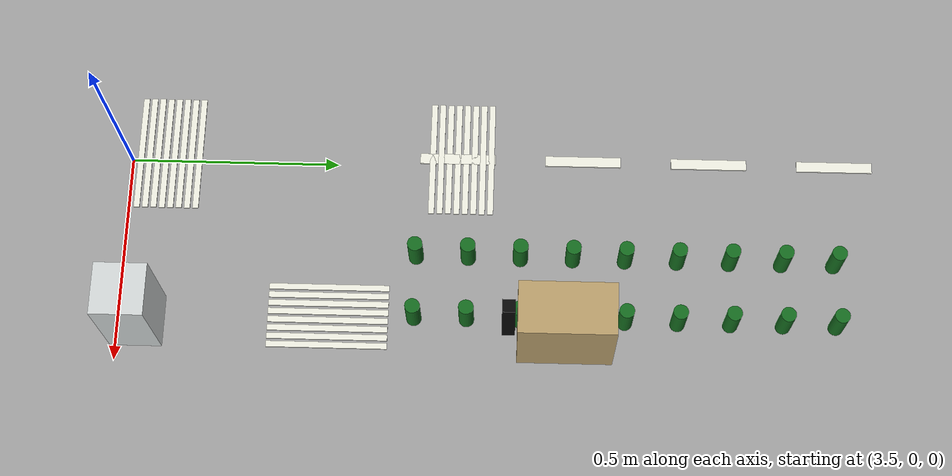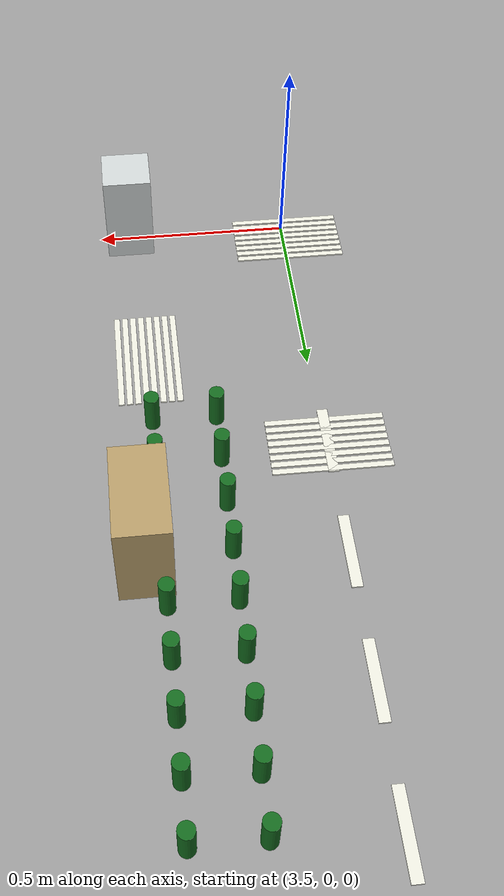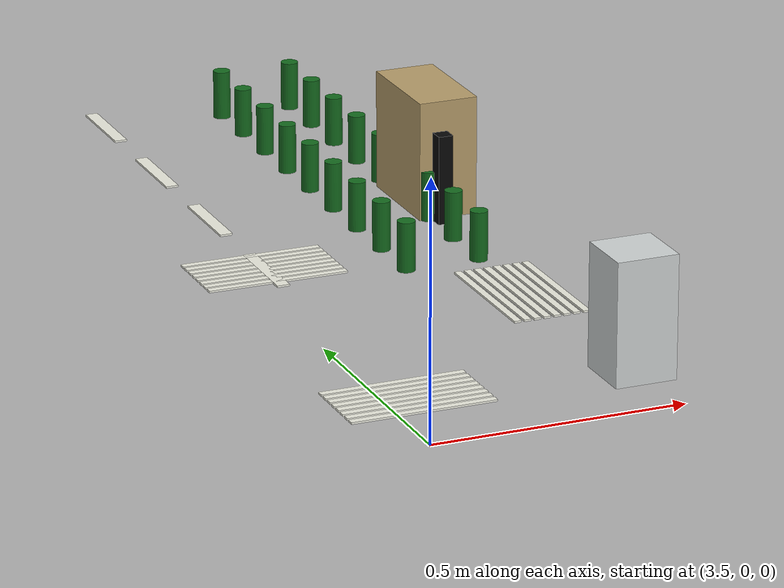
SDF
<sdf version="1.7">
 <world name="nexus_sandbox_imx219">
  <model name="LM-RING-E-01">
   <static>true</static>
   <pose>3.5 0.79 0.05450000000000001 0 0 0</pose>
   <link name="link">
    <collision name="collision"><geometry><box><size>0.025 0.18 0.004</size></box></geometry></collision>
    <visual name="visual">
     <geometry><box><size>0.025 0.18 0.004</size></box></geometry>
     <material><ambient>0.93 0.93 0.88 1</ambient><diffuse>0.93 0.93 0.88 1</diffuse></material>
    </visual>
   </link>
  </model>
  <model name="LM-RING-E-02">
   <static>true</static>
   <pose>3.5 1.09 0.05450000000000001 0 0 0</pose>
   <link name="link">
    <collision name="collision"><geometry><box><size>0.025 0.18 0.004</size></box></geometry></collision>
    <visual name="visual">
     <geometry><box><size>0.025 0.18 0.004</size></box></geometry>
     <material><ambient>0.93 0.93 0.88 1</ambient><diffuse>0.93 0.93 0.88 1</diffuse></material>
    </visual>
   </link>
  </model>
  <model name="LM-RING-E-03">
   <static>true</static>
   <pose>3.5 1.3900000000000001 0.05450000000000001 0 0 0</pose>
   <link name="link">
    <collision name="collision"><geometry><box><size>0.025 0.18 0.004</size></box></geometry></collision>
    <visual name="visual">
     <geometry><box><size>0.025 0.18 0.004</size></box></geometry>
     <material><ambient>0.93 0.93 0.88 1</ambient><diffuse>0.93 0.93 0.88 1</diffuse></material>
    </visual>
   </link>
  </model>
  <model name="LM-RING-E-04">
   <static>true</static>
   <pose>3.5 1.69 0.05450000000000001 0 0 0</pose>
   <link name="link">
    <collision name="collision"><geometry><box><size>0.025 0.18 0.004</size></box></geometry></collision>
    <visual name="visual">
     <geometry><box><size>0.025 0.18 0.004</size></box></geometry>
     <material><ambient>0.93 0.93 0.88 1</ambient><diffuse>0.93 0.93 0.88 1</diffuse></material>
    </visual>
   </link>
  </model>
  <model name="CW-SE-X-01">
   <static>true</static>
   <pose>3.5 0.73 0.05450000000000001 0 0 0</pose>
   <link name="link">
    <collision name="collision"><geometry><box><size>0.28 0.014 0.004</size></box></geometry></collision>
    <visual name="visual">
     <geometry><box><size>0.28 0.014 0.004</size></box></geometry>
     <material><ambient>0.93 0.93 0.88 1</ambient><diffuse>0.93 0.93 0.88 1</diffuse></material>
    </visual>
   </link>
  </model>
  <model name="CW-SE-X-02">
   <static>true</static>
   <pose>3.5 0.75 0.05450000000000001 0 0 0</pose>
   <link name="link">
    <collision name="collision"><geometry><box><size>0.28 0.014 0.004</size></box></geometry></collision>
    <visual name="visual">
     <geometry><box><size>0.28 0.014 0.004</size></box></geometry>
     <material><ambient>0.93 0.93 0.88 1</ambient><diffuse>0.93 0.93 0.88 1</diffuse></material>
    </visual>
   </link>
  </model>
  <model name="CW-SE-X-03">
   <static>true</static>
   <pose>3.5 0.77 0.05450000000000001 0 0 0</pose>
   <link name="link">
    <collision name="collision"><geometry><box><size>0.28 0.014 0.004</size></box></geometry></collision>
    <visual name="visual">
     <geometry><box><size>0.28 0.014 0.004</size></box></geometry>
     <material><ambient>0.93 0.93 0.88 1</ambient><diffuse>0.93 0.93 0.88 1</diffuse></material>
    </visual>
   </link>
  </model>
  <model name="CW-SE-X-04">
   <static>true</static>
   <pose>3.5 0.79 0.05450000000000001 0 0 0</pose>
   <link name="link">
    <collision name="collision"><geometry><box><size>0.28 0.014 0.004</size></box></geometry></collision>
    <visual name="visual">
     <geometry><box><size>0.28 0.014 0.004</size></box></geometry>
     <material><ambient>0.93 0.93 0.88 1</ambient><diffuse>0.93 0.93 0.88 1</diffuse></material>
    </visual>
   </link>
  </model>
  <model name="CW-SE-X-05">
   <static>true</static>
   <pose>3.5 0.81 0.05450000000000001 0 0 0</pose>
   <link name="link">
    <collision name="collision"><geometry><box><size>0.28 0.014 0.004</size></box></geometry></collision>
    <visual name="visual">
     <geometry><box><size>0.28 0.014 0.004</size></box></geometry>
     <material><ambient>0.93 0.93 0.88 1</ambient><diffuse>0.93 0.93 0.88 1</diffuse></material>
    </visual>
   </link>
  </model>
  <model name="CW-SE-X-06">
   <static>true</static>
   <pose>3.5 0.8300000000000001 0.05450000000000001 0 0 0</pose>
   <link name="link">
    <collision name="collision"><geometry><box><size>0.28 0.014 0.004</size></box></geometry></collision>
    <visual name="visual">
     <geometry><box><size>0.28 0.014 0.004</size></box></geometry>
     <material><ambient>0.93 0.93 0.88 1</ambient><diffuse>0.93 0.93 0.88 1</diffuse></material>
    </visual>
   </link>
  </model>
  <model name="CW-SE-X-07">
   <static>true</static>
   <pose>3.5 0.8500000000000001 0.05450000000000001 0 0 0</pose>
   <link name="link">
    <collision name="collision"><geometry><box><size>0.28 0.014 0.004</size></box></geometry></collision>
    <visual name="visual">
     <geometry><box><size>0.28 0.014 0.004</size></box></geometry>
     <material><ambient>0.93 0.93 0.88 1</ambient><diffuse>0.93 0.93 0.88 1</diffuse></material>
    </visual>
   </link>
  </model>
  <model name="CW-SE-X-08">
   <static>true</static>
   <pose>3.5 0.8700000000000001 0.05450000000000001 0 0 0</pose>
   <link name="link">
    <collision name="collision"><geometry><box><size>0.28 0.014 0.004</size></box></geometry></collision>
    <visual name="visual">
     <geometry><box><size>0.28 0.014 0.004</size></box></geometry>
     <material><ambient>0.93 0.93 0.88 1</ambient><diffuse>0.93 0.93 0.88 1</diffuse></material>
    </visual>
   </link>
  </model>
  <model name="CW-EXT-E-S-01">
   <static>true</static>
   <pose>3.5 0.03 0.05450000000000001 0 0 0</pose>
   <link name="link">
    <collision name="collision"><geometry><box><size>0.28 0.014 0.004</size></box></geometry></collision>
    <visual name="visual">
     <geometry><box><size>0.28 0.014 0.004</size></box></geometry>
     <material><ambient>0.93 0.93 0.88 1</ambient><diffuse>0.93 0.93 0.88 1</diffuse></material>
    </visual>
   </link>
  </model>
  <model name="CW-EXT-E-S-02">
   <static>true</static>
   <pose>3.5 0.05 0.05450000000000001 0 0 0</pose>
   <link name="link">
    <collision name="collision"><geometry><box><size>0.28 0.014 0.004</size></box></geometry></collision>
    <visual name="visual">
     <geometry><box><size>0.28 0.014 0.004</size></box></geometry>
     <material><ambient>0.93 0.93 0.88 1</ambient><diffuse>0.93 0.93 0.88 1</diffuse></material>
    </visual>
   </link>
  </model>
  <model name="CW-EXT-E-S-03">
   <static>true</static>
   <pose>3.5 0.07 0.05450000000000001 0 0 0</pose>
   <link name="link">
    <collision name="collision"><geometry><box><size>0.28 0.014 0.004</size></box></geometry></collision>
    <visual name="visual">
     <geometry><box><size>0.28 0.014 0.004</size></box></geometry>
     <material><ambient>0.93 0.93 0.88 1</ambient><diffuse>0.93 0.93 0.88 1</diffuse></material>
    </visual>
   </link>
  </model>
  <model name="CW-EXT-E-S-04">
   <static>true</static>
   <pose>3.5 0.09000000000000001 0.05450000000000001 0 0 0</pose>
   <link name="link">
    <collision name="collision"><geometry><box><size>0.28 0.014 0.004</size></box></geometry></collision>
    <visual name="visual">
     <geometry><box><size>0.28 0.014 0.004</size></box></geometry>
     <material><ambient>0.93 0.93 0.88 1</ambient><diffuse>0.93 0.93 0.88 1</diffuse></material>
    </visual>
   </link>
  </model>
  <model name="CW-EXT-E-S-05">
   <static>true</static>
   <pose>3.5 0.11 0.05450000000000001 0 0 0</pose>
   <link name="link">
    <collision name="collision"><geometry><box><size>0.28 0.014 0.004</size></box></geometry></collision>
    <visual name="visual">
     <geometry><box><size>0.28 0.014 0.004</size></box></geometry>
     <material><ambient>0.93 0.93 0.88 1</ambient><diffuse>0.93 0.93 0.88 1</diffuse></material>
    </visual>
   </link>
  </model>
  <model name="CW-EXT-E-S-06">
   <static>true</static>
   <pose>3.5 0.13 0.05450000000000001 0 0 0</pose>
   <link name="link">
    <collision name="collision"><geometry><box><size>0.28 0.014 0.004</size></box></geometry></collision>
    <visual name="visual">
     <geometry><box><size>0.28 0.014 0.004</size></box></geometry>
     <material><ambient>0.93 0.93 0.88 1</ambient><diffuse>0.93 0.93 0.88 1</diffuse></material>
    </visual>
   </link>
  </model>
  <model name="CW-EXT-E-S-07">
   <static>true</static>
   <pose>3.5 0.15000000000000002 0.05450000000000001 0 0 0</pose>
   <link name="link">
    <collision name="collision"><geometry><box><size>0.28 0.014 0.004</size></box></geometry></collision>
    <visual name="visual">
     <geometry><box><size>0.28 0.014 0.004</size></box></geometry>
     <material><ambient>0.93 0.93 0.88 1</ambient><diffuse>0.93 0.93 0.88 1</diffuse></material>
    </visual>
   </link>
  </model>
  <model name="CW-EXT-E-S-08">
   <static>true</static>
   <pose>3.5 0.17 0.05450000000000001 0 0 0</pose>
   <link name="link">
    <collision name="collision"><geometry><box><size>0.28 0.014 0.004</size></box></geometry></collision>
    <visual name="visual">
     <geometry><box><size>0.28 0.014 0.004</size></box></geometry>
     <material><ambient>0.93 0.93 0.88 1</ambient><diffuse>0.93 0.93 0.88 1</diffuse></material>
    </visual>
   </link>
  </model>
  <model name="CW-EXT-S-E-01">
   <static>true</static>
   <pose>3.83 0.5 0.05450000000000001 0 0 0</pose>
   <link name="link">
    <collision name="collision"><geometry><box><size>0.014 0.28 0.004</size></box></geometry></collision>
    <visual name="visual">
     <geometry><box><size>0.014 0.28 0.004</size></box></geometry>
     <material><ambient>0.93 0.93 0.88 1</ambient><diffuse>0.93 0.93 0.88 1</diffuse></material>
    </visual>
   </link>
  </model>
  <model name="CW-EXT-S-E-02">
   <static>true</static>
   <pose>3.85 0.5 0.05450000000000001 0 0 0</pose>
   <link name="link">
    <collision name="collision"><geometry><box><size>0.014 0.28 0.004</size></box></geometry></collision>
    <visual name="visual">
     <geometry><box><size>0.014 0.28 0.004</size></box></geometry>
     <material><ambient>0.93 0.93 0.88 1</ambient><diffuse>0.93 0.93 0.88 1</diffuse></material>
    </visual>
   </link>
  </model>
  <model name="CW-EXT-S-E-03">
   <static>true</static>
   <pose>3.87 0.5 0.05450000000000001 0 0 0</pose>
   <link name="link">
    <collision name="collision"><geometry><box><size>0.014 0.28 0.004</size></box></geometry></collision>
    <visual name="visual">
     <geometry><box><size>0.014 0.28 0.004</size></box></geometry>
     <material><ambient>0.93 0.93 0.88 1</ambient><diffuse>0.93 0.93 0.88 1</diffuse></material>
    </visual>
   </link>
  </model>
  <model name="CW-EXT-S-E-04">
   <static>true</static>
   <pose>3.89 0.5 0.05450000000000001 0 0 0</pose>
   <link name="link">
    <collision name="collision"><geometry><box><size>0.014 0.28 0.004</size></box></geometry></collision>
    <visual name="visual">
     <geometry><box><size>0.014 0.28 0.004</size></box></geometry>
     <material><ambient>0.93 0.93 0.88 1</ambient><diffuse>0.93 0.93 0.88 1</diffuse></material>
    </visual>
   </link>
  </model>
  <model name="CW-EXT-S-E-05">
   <static>true</static>
   <pose>3.9099999999999997 0.5 0.05450000000000001 0 0 0</pose>
   <link name="link">
    <collision name="collision"><geometry><box><size>0.014 0.28 0.004</size></box></geometry></collision>
    <visual name="visual">
     <geometry><box><size>0.014 0.28 0.004</size></box></geometry>
     <material><ambient>0.93 0.93 0.88 1</ambient><diffuse>0.93 0.93 0.88 1</diffuse></material>
    </visual>
   </link>
  </model>
  <model name="CW-EXT-S-E-06">
   <static>true</static>
   <pose>3.9299999999999997 0.5 0.05450000000000001 0 0 0</pose>
   <link name="link">
    <collision name="collision"><geometry><box><size>0.014 0.28 0.004</size></box></geometry></collision>
    <visual name="visual">
     <geometry><box><size>0.014 0.28 0.004</size></box></geometry>
     <material><ambient>0.93 0.93 0.88 1</ambient><diffuse>0.93 0.93 0.88 1</diffuse></material>
    </visual>
   </link>
  </model>
  <model name="CW-EXT-S-E-07">
   <static>true</static>
   <pose>3.9499999999999997 0.5 0.05450000000000001 0 0 0</pose>
   <link name="link">
    <collision name="collision"><geometry><box><size>0.014 0.28 0.004</size></box></geometry></collision>
    <visual name="visual">
     <geometry><box><size>0.014 0.28 0.004</size></box></geometry>
     <material><ambient>0.93 0.93 0.88 1</ambient><diffuse>0.93 0.93 0.88 1</diffuse></material>
    </visual>
   </link>
  </model>
  <model name="CW-EXT-S-E-08">
   <static>true</static>
   <pose>3.9699999999999998 0.5 0.05450000000000001 0 0 0</pose>
   <link name="link">
    <collision name="collision"><geometry><box><size>0.014 0.28 0.004</size></box></geometry></collision>
    <visual name="visual">
     <geometry><box><size>0.014 0.28 0.004</size></box></geometry>
     <material><ambient>0.93 0.93 0.88 1</ambient><diffuse>0.93 0.93 0.88 1</diffuse></material>
    </visual>
   </link>
  </model>
  <model name="BLD-R01">
   <static>true</static>
   <pose>3.94 1.05 0.16999999999999998 0 0 0</pose>
   <link name="link">
    <collision name="collision"><geometry><box><size>0.12 0.22 0.24</size></box></geometry></collision>
    <visual name="visual">
     <geometry><box><size>0.12 0.22 0.24</size></box></geometry>
     <material><ambient>0.72 0.62 0.42 1</ambient><diffuse>0.72 0.62 0.42 1</diffuse></material>
    </visual>
   </link>
  </model>
  <model name="BLD-B06">
   <static>true</static>
   <pose>3.92 0.06 0.16999999999999998 0 0 0</pose>
   <link name="link">
    <collision name="collision"><geometry><box><size>0.12 0.12 0.24</size></box></geometry></collision>
    <visual name="visual">
     <geometry><box><size>0.12 0.12 0.24</size></box></geometry>
     <material><ambient>0.82 0.84 0.84 1</ambient><diffuse>0.82 0.84 0.84 1</diffuse></material>
    </visual>
   </link>
  </model>
  <model name="TR-R01-01">
   <static>true</static>
   <pose>3.9 0.7000000000000001 0.1 0 0 0</pose>
   <link name="link">
    <collision name="collision">
     <geometry><cylinder><radius>0.0175</radius><length>0.1</length></cylinder></geometry>
    </collision>
    <visual name="visual">
     <geometry><cylinder><radius>0.0175</radius><length>0.1</length></cylinder></geometry>
     <material><ambient>0.08 0.42 0.12 1</ambient><diffuse>0.08 0.42 0.12 1</diffuse></material>
    </visual>
   </link>
  </model>
  <model name="TR-R01-02">
   <static>true</static>
   <pose>3.9 0.8222222222222223 0.1 0 0 0</pose>
   <link name="link">
    <collision name="collision">
     <geometry><cylinder><radius>0.0175</radius><length>0.1</length></cylinder></geometry>
    </collision>
    <visual name="visual">
     <geometry><cylinder><radius>0.0175</radius><length>0.1</length></cylinder></geometry>
     <material><ambient>0.08 0.42 0.12 1</ambient><diffuse>0.08 0.42 0.12 1</diffuse></material>
    </visual>
   </link>
  </model>
  <model name="TR-R01-03">
   <static>true</static>
   <pose>3.9 0.9444444444444444 0.1 0 0 0</pose>
   <link name="link">
    <collision name="collision">
     <geometry><cylinder><radius>0.0175</radius><length>0.1</length></cylinder></geometry>
    </collision>
    <visual name="visual">
     <geometry><cylinder><radius>0.0175</radius><length>0.1</length></cylinder></geometry>
     <material><ambient>0.08 0.42 0.12 1</ambient><diffuse>0.08 0.42 0.12 1</diffuse></material>
    </visual>
   </link>
  </model>
  <model name="TR-R01-04">
   <static>true</static>
   <pose>3.9 1.0666666666666667 0.1 0 0 0</pose>
   <link name="link">
    <collision name="collision">
     <geometry><cylinder><radius>0.0175</radius><length>0.1</length></cylinder></geometry>
    </collision>
    <visual name="visual">
     <geometry><cylinder><radius>0.0175</radius><length>0.1</length></cylinder></geometry>
     <material><ambient>0.08 0.42 0.12 1</ambient><diffuse>0.08 0.42 0.12 1</diffuse></material>
    </visual>
   </link>
  </model>
  <model name="TR-R01-05">
   <static>true</static>
   <pose>3.9 1.1888888888888889 0.1 0 0 0</pose>
   <link name="link">
    <collision name="collision">
     <geometry><cylinder><radius>0.0175</radius><length>0.1</length></cylinder></geometry>
    </collision>
    <visual name="visual">
     <geometry><cylinder><radius>0.0175</radius><length>0.1</length></cylinder></geometry>
     <material><ambient>0.08 0.42 0.12 1</ambient><diffuse>0.08 0.42 0.12 1</diffuse></material>
    </visual>
   </link>
  </model>
  <model name="TR-R01-06">
   <static>true</static>
   <pose>3.9 1.3111111111111111 0.1 0 0 0</pose>
   <link name="link">
    <collision name="collision">
     <geometry><cylinder><radius>0.0175</radius><length>0.1</length></cylinder></geometry>
    </collision>
    <visual name="visual">
     <geometry><cylinder><radius>0.0175</radius><length>0.1</length></cylinder></geometry>
     <material><ambient>0.08 0.42 0.12 1</ambient><diffuse>0.08 0.42 0.12 1</diffuse></material>
    </visual>
   </link>
  </model>
  <model name="TR-R01-07">
   <static>true</static>
   <pose>3.9 1.4333333333333333 0.1 0 0 0</pose>
   <link name="link">
    <collision name="collision">
     <geometry><cylinder><radius>0.0175</radius><length>0.1</length></cylinder></geometry>
    </collision>
    <visual name="visual">
     <geometry><cylinder><radius>0.0175</radius><length>0.1</length></cylinder></geometry>
     <material><ambient>0.08 0.42 0.12 1</ambient><diffuse>0.08 0.42 0.12 1</diffuse></material>
    </visual>
   </link>
  </model>
  <model name="TR-R01-08">
   <static>true</static>
   <pose>3.9 1.5555555555555556 0.1 0 0 0</pose>
   <link name="link">
    <collision name="collision">
     <geometry><cylinder><radius>0.0175</radius><length>0.1</length></cylinder></geometry>
    </collision>
    <visual name="visual">
     <geometry><cylinder><radius>0.0175</radius><length>0.1</length></cylinder></geometry>
     <material><ambient>0.08 0.42 0.12 1</ambient><diffuse>0.08 0.42 0.12 1</diffuse></material>
    </visual>
   </link>
  </model>
  <model name="TR-R01-09">
   <static>true</static>
   <pose>3.9 1.6777777777777776 0.1 0 0 0</pose>
   <link name="link">
    <collision name="collision">
     <geometry><cylinder><radius>0.0175</radius><length>0.1</length></cylinder></geometry>
    </collision>
    <visual name="visual">
     <geometry><cylinder><radius>0.0175</radius><length>0.1</length></cylinder></geometry>
     <material><ambient>0.08 0.42 0.12 1</ambient><diffuse>0.08 0.42 0.12 1</diffuse></material>
    </visual>
   </link>
  </model>
  <model name="TR-R02-01">
   <static>true</static>
   <pose>3.75 0.7000000000000001 0.1 0 0 0</pose>
   <link name="link">
    <collision name="collision">
     <geometry><cylinder><radius>0.0175</radius><length>0.1</length></cylinder></geometry>
    </collision>
    <visual name="visual">
     <geometry><cylinder><radius>0.0175</radius><length>0.1</length></cylinder></geometry>
     <material><ambient>0.08 0.42 0.12 1</ambient><diffuse>0.08 0.42 0.12 1</diffuse></material>
    </visual>
   </link>
  </model>
  <model name="TR-R02-02">
   <static>true</static>
   <pose>3.75 0.8222222222222223 0.1 0 0 0</pose>
   <link name="link">
    <collision name="collision">
     <geometry><cylinder><radius>0.0175</radius><length>0.1</length></cylinder></geometry>
    </collision>
    <visual name="visual">
     <geometry><cylinder><radius>0.0175</radius><length>0.1</length></cylinder></geometry>
     <material><ambient>0.08 0.42 0.12 1</ambient><diffuse>0.08 0.42 0.12 1</diffuse></material>
    </visual>
   </link>
  </model>
  <model name="TR-R02-03">
   <static>true</static>
   <pose>3.75 0.9444444444444444 0.1 0 0 0</pose>
   <link name="link">
    <collision name="collision">
     <geometry><cylinder><radius>0.0175</radius><length>0.1</length></cylinder></geometry>
    </collision>
    <visual name="visual">
     <geometry><cylinder><radius>0.0175</radius><length>0.1</length></cylinder></geometry>
     <material><ambient>0.08 0.42 0.12 1</ambient><diffuse>0.08 0.42 0.12 1</diffuse></material>
    </visual>
   </link>
  </model>
  <model name="TR-R02-04">
   <static>true</static>
   <pose>3.75 1.0666666666666667 0.1 0 0 0</pose>
   <link name="link">
    <collision name="collision">
     <geometry><cylinder><radius>0.0175</radius><length>0.1</length></cylinder></geometry>
    </collision>
    <visual name="visual">
     <geometry><cylinder><radius>0.0175</radius><length>0.1</length></cylinder></geometry>
     <material><ambient>0.08 0.42 0.12 1</ambient><diffuse>0.08 0.42 0.12 1</diffuse></material>
    </visual>
   </link>
  </model>
  <model name="TR-R02-05">
   <static>true</static>
   <pose>3.75 1.1888888888888889 0.1 0 0 0</pose>
   <link name="link">
    <collision name="collision">
     <geometry><cylinder><radius>0.0175</radius><length>0.1</length></cylinder></geometry>
    </collision>
    <visual name="visual">
     <geometry><cylinder><radius>0.0175</radius><length>0.1</length></cylinder></geometry>
     <material><ambient>0.08 0.42 0.12 1</ambient><diffuse>0.08 0.42 0.12 1</diffuse></material>
    </visual>
   </link>
  </model>
  <model name="TR-R02-06">
   <static>true</static>
   <pose>3.75 1.3111111111111111 0.1 0 0 0</pose>
   <link name="link">
    <collision name="collision">
     <geometry><cylinder><radius>0.0175</radius><length>0.1</length></cylinder></geometry>
    </collision>
    <visual name="visual">
     <geometry><cylinder><radius>0.0175</radius><length>0.1</length></cylinder></geometry>
     <material><ambient>0.08 0.42 0.12 1</ambient><diffuse>0.08 0.42 0.12 1</diffuse></material>
    </visual>
   </link>
  </model>
  <model name="TR-R02-07">
   <static>true</static>
   <pose>3.75 1.4333333333333333 0.1 0 0 0</pose>
   <link name="link">
    <collision name="collision">
     <geometry><cylinder><radius>0.0175</radius><length>0.1</length></cylinder></geometry>
    </collision>
    <visual name="visual">
     <geometry><cylinder><radius>0.0175</radius><length>0.1</length></cylinder></geometry>
     <material><ambient>0.08 0.42 0.12 1</ambient><diffuse>0.08 0.42 0.12 1</diffuse></material>
    </visual>
   </link>
  </model>
  <model name="TR-R02-08">
   <static>true</static>
   <pose>3.75 1.5555555555555556 0.1 0 0 0</pose>
   <link name="link">
    <collision name="collision">
     <geometry><cylinder><radius>0.0175</radius><length>0.1</length></cylinder></geometry>
    </collision>
    <visual name="visual">
     <geometry><cylinder><radius>0.0175</radius><length>0.1</length></cylinder></geometry>
     <material><ambient>0.08 0.42 0.12 1</ambient><diffuse>0.08 0.42 0.12 1</diffuse></material>
    </visual>
   </link>
  </model>
  <model name="TR-R02-09">
   <static>true</static>
   <pose>3.75 1.6777777777777776 0.1 0 0 0</pose>
   <link name="link">
    <collision name="collision">
     <geometry><cylinder><radius>0.0175</radius><length>0.1</length></cylinder></geometry>
    </collision>
    <visual name="visual">
     <geometry><cylinder><radius>0.0175</radius><length>0.1</length></cylinder></geometry>
     <material><ambient>0.08 0.42 0.12 1</ambient><diffuse>0.08 0.42 0.12 1</diffuse></material>
    </visual>
   </link>
  </model>
  <model name="TL-SE-2">
   <static>true</static>
   <pose>3.92 0.08 0.14 0 0 0</pose>
   <link name="link">
    <collision name="collision"><geometry><box><size>0.03 0.03 0.18</size></box></geometry></collision>
    <visual name="visual">
     <geometry><box><size>0.03 0.03 0.18</size></box></geometry>
     <material><ambient>0.03 0.03 0.03 1</ambient><diffuse>0.03 0.03 0.03 1</diffuse></material>
    </visual>
   </link>
  </model>
  <model name="TL-SE-4">
   <static>true</static>
   <pose>3.92 0.92 0.14 0 0 0</pose>
   <link name="link">
    <collision name="collision"><geometry><box><size>0.03 0.03 0.18</size></box></geometry></collision>
    <visual name="visual">
     <geometry><box><size>0.03 0.03 0.18</size></box></geometry>
     <material><ambient>0.03 0.03 0.03 1</ambient><diffuse>0.03 0.03 0.03 1</diffuse></material>
    </visual>
   </link>
  </model>
 </world>
</sdf>
